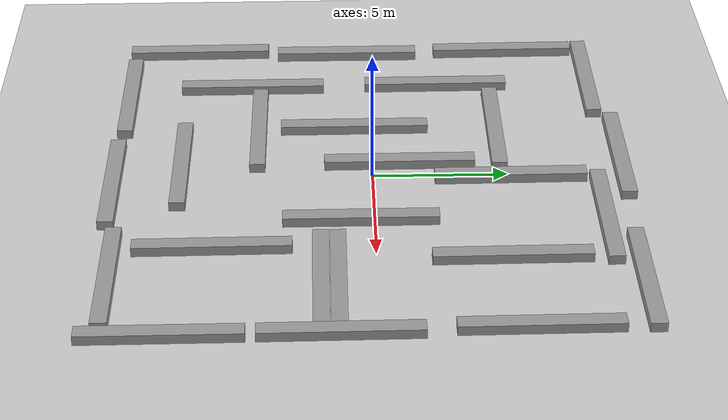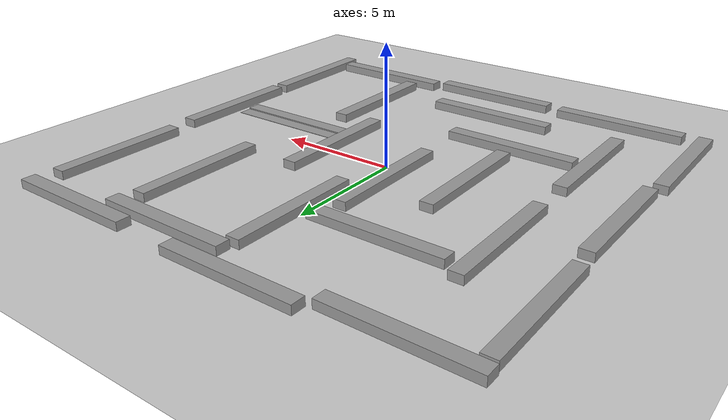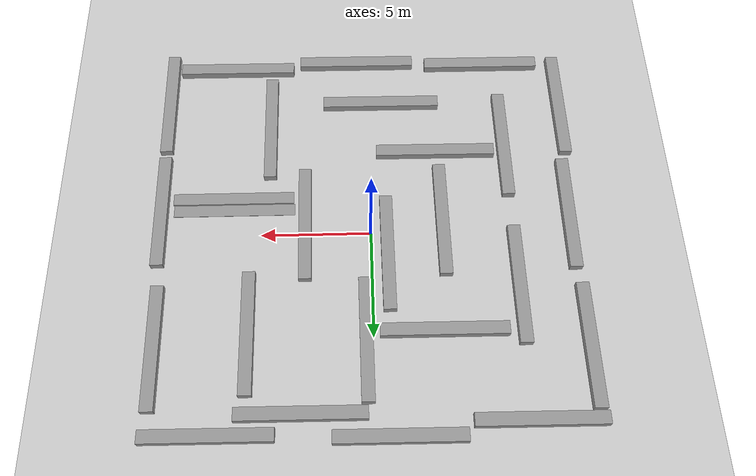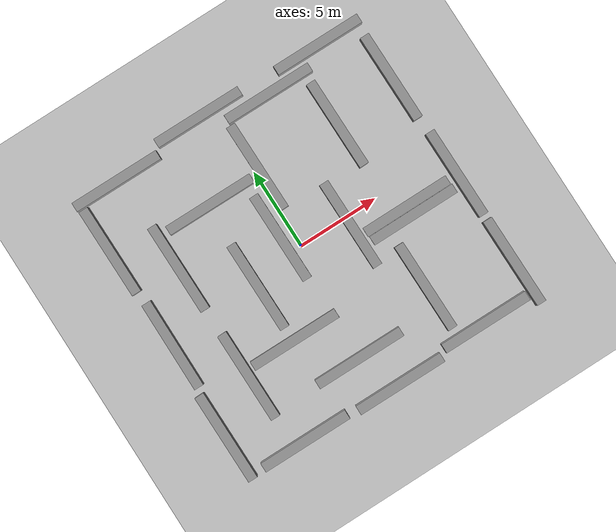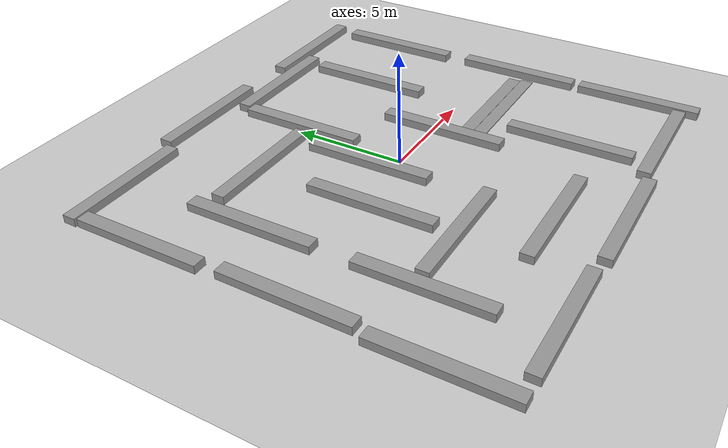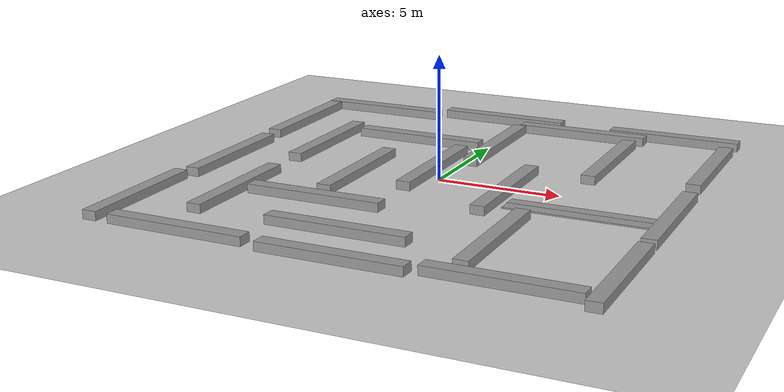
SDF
<sdf version="1.6">
 <world name="default">
  <light name="sun" type="directional">
   <pose>0 0 10 0 -0 0</pose>
   <diffuse>0.8 0.8 0.8 1</diffuse>
   <specular>0.1 0.1 0.1 1</specular>
   <attenuation>
    <range>1000</range>
    <constant>0.9</constant>
    <linear>0.01</linear>
    <quadratic>0.001</quadratic>
   </attenuation>
   <direction>-0.5 0.5 -1</direction>
  </light>
  <model name="ground_plane">
   <static>1</static>
   <link name="link">
    <collision name="collision">
     <geometry><plane><normal>0 0 1</normal><size>100 100</size></plane></geometry>
     <surface><friction><ode><mu>100</mu><mu2>50</mu2></ode></friction></surface>
    </collision>
    <visual name="visual">
     <cast_shadows>0</cast_shadows>
     <geometry><plane><normal>0 0 1</normal><size>100 100</size></plane></geometry>
     <material>
      <script><uri>file://media/materials/scripts/gazebo.material</uri><name>Gazebo/Grey</name></script>
     </material>
    </visual>
   </link>
  </model>
  <gravity>0 0 -9.8</gravity>
  <magnetic_field>6e-06 2.3e-05 -4.2e-05</magnetic_field>
  <atmosphere type="adiabatic"/>
  <physics name="default_physics" default="0" type="ode">
   <max_step_size>0.001</max_step_size>
   <real_time_factor>1</real_time_factor>
   <real_time_update_rate>1000</real_time_update_rate>
  </physics>
  <scene><ambient>0.4 0.4 0.4 1</ambient><background>0.7 0.7 0.7 1</background><shadows>1</shadows></scene>
  <spherical_coordinates>
   <surface_model>EARTH_WGS84</surface_model>
   <latitude_deg>0</latitude_deg>
   <longitude_deg>0</longitude_deg>
   <elevation>0</elevation>
   <heading_deg>0</heading_deg>
  </spherical_coordinates>
  <model name="unit_box_0_0">
   <pose>-9.1262 -0.79289 0.174776 0.001648 8e-06 -0.004603</pose>
   <link name="link">
    <inertial>
     <mass>1</mass>
     <inertia>
      <ixx>0.166667</ixx>
      <ixy>0</ixy>
      <ixz>0</ixz>
      <iyy>0.166667</iyy>
      <iyz>0</iyz>
      <izz>0.166667</izz>
     </inertia>
    </inertial>
    <collision name="collision"><geometry><box><size>0.580221 5.60028 0.358774</size></box></geometry></collision>
    <visual name="visual">
     <geometry><box><size>0.580221 5.60028 0.358774</size></box></geometry>
     <material>
      <script><name>Gazebo/Grey</name><uri>file://media/materials/scripts/gazebo.material</uri></script>
     </material>
    </visual>
   </link>
  </model>
  <model name="unit_box_0_0_clone">
   <pose>-9.37749 -6.78395 0.174777 0.001648 -8e-06 0.004603</pose>
   <link name="link">
    <inertial>
     <mass>1</mass>
     <inertia>
      <ixx>0.166667</ixx>
      <ixy>0</ixy>
      <ixz>0</ixz>
      <iyy>0.166667</iyy>
      <iyz>0</iyz>
      <izz>0.166667</izz>
     </inertia>
    </inertial>
    <collision name="collision"><geometry><box><size>0.580222 5.60029 0.358774</size></box></geometry></collision>
    <visual name="visual">
     <geometry><box><size>0.580222 5.60029 0.358774</size></box></geometry>
     <material>
      <script><name>Gazebo/Grey</name><uri>file://media/materials/scripts/gazebo.material</uri></script>
     </material>
    </visual>
   </link>
  </model>
  <model name="unit_box_0_0_clone_0">
   <pose>-9.2676 5.56528 0.174777 0.001648 -8e-06 0.004603</pose>
   <link name="link">
    <inertial>
     <mass>1</mass>
     <inertia>
      <ixx>0.166667</ixx>
      <ixy>0</ixy>
      <ixz>0</ixz>
      <iyy>0.166667</iyy>
      <iyz>0</iyz>
      <izz>0.166667</izz>
     </inertia>
    </inertial>
    <collision name="collision"><geometry><box><size>0.580222 5.60029 0.358774</size></box></geometry></collision>
    <visual name="visual">
     <geometry><box><size>0.580222 5.60029 0.358774</size></box></geometry>
     <material>
      <script><name>Gazebo/Grey</name><uri>file://media/materials/scripts/gazebo.material</uri></script>
     </material>
    </visual>
   </link>
  </model>
  <model name="unit_box_0_0_clone_1">
   <pose>-5.72714 -9.355 0.174777 -0.001648 -8e-06 -1.57542</pose>
   <link name="link">
    <inertial>
     <mass>1</mass>
     <inertia>
      <ixx>0.166667</ixx>
      <ixy>0</ixy>
      <ixz>0</ixz>
      <iyy>0.166667</iyy>
      <iyz>0</iyz>
      <izz>0.166667</izz>
     </inertia>
    </inertial>
    <collision name="collision"><geometry><box><size>0.580222 5.60029 0.358774</size></box></geometry></collision>
    <visual name="visual">
     <geometry><box><size>0.580222 5.60029 0.358774</size></box></geometry>
     <material>
      <script><name>Gazebo/Grey</name><uri>file://media/materials/scripts/gazebo.material</uri></script>
     </material>
    </visual>
   </link>
  </model>
  <model name="unit_box_0_0_clone_2">
   <pose>9.65284 -7.23387 0.174777 -0.001648 8e-06 0.004603</pose>
   <link name="link">
    <inertial>
     <mass>1</mass>
     <inertia>
      <ixx>0.166667</ixx>
      <ixy>0</ixy>
      <ixz>0</ixz>
      <iyy>0.166667</iyy>
      <iyz>0</iyz>
      <izz>0.166667</izz>
     </inertia>
    </inertial>
    <collision name="collision"><geometry><box><size>0.580222 5.60029 0.358774</size></box></geometry></collision>
    <visual name="visual">
     <geometry><box><size>0.580222 5.60029 0.358774</size></box></geometry>
     <material>
      <script><name>Gazebo/Grey</name><uri>file://media/materials/scripts/gazebo.material</uri></script>
     </material>
    </visual>
   </link>
  </model>
  <model name="unit_box_0_0_clone_3">
   <pose>9.62113 -1.29648 0.174777 0.001648 -8e-06 0.004603</pose>
   <link name="link">
    <inertial>
     <mass>1</mass>
     <inertia>
      <ixx>0.166667</ixx>
      <ixy>0</ixy>
      <ixz>0</ixz>
      <iyy>0.166667</iyy>
      <iyz>0</iyz>
      <izz>0.166667</izz>
     </inertia>
    </inertial>
    <collision name="collision"><geometry><box><size>0.580222 5.60029 0.358774</size></box></geometry></collision>
    <visual name="visual">
     <geometry><box><size>0.580222 5.60029 0.358774</size></box></geometry>
     <material>
      <script><name>Gazebo/Grey</name><uri>file://media/materials/scripts/gazebo.material</uri></script>
     </material>
    </visual>
   </link>
  </model>
  <model name="unit_box_0_0_clone_4">
   <pose>9.4587 5.29897 0.174777 0.001648 -8e-06 0.004603</pose>
   <link name="link">
    <inertial>
     <mass>1</mass>
     <inertia>
      <ixx>0.166667</ixx>
      <ixy>0</ixy>
      <ixz>0</ixz>
      <iyy>0.166667</iyy>
      <iyz>0</iyz>
      <izz>0.166667</izz>
     </inertia>
    </inertial>
    <collision name="collision"><geometry><box><size>0.580222 5.60029 0.358774</size></box></geometry></collision>
    <visual name="visual">
     <geometry><box><size>0.580222 5.60029 0.358774</size></box></geometry>
     <material>
      <script><name>Gazebo/Grey</name><uri>file://media/materials/scripts/gazebo.material</uri></script>
     </material>
    </visual>
   </link>
  </model>
  <model name="unit_box_0_0_clone_1_clone">
   <pose>0.502371 -9.54843 0.174777 0.001648 8e-06 -1.57542</pose>
   <link name="link">
    <inertial>
     <mass>1</mass>
     <inertia>
      <ixx>0.166667</ixx>
      <ixy>0</ixy>
      <ixz>0</ixz>
      <iyy>0.166667</iyy>
      <iyz>0</iyz>
      <izz>0.166667</izz>
     </inertia>
    </inertial>
    <collision name="collision"><geometry><box><size>0.580222 5.60029 0.358774</size></box></geometry></collision>
    <visual name="visual">
     <geometry><box><size>0.580222 5.60029 0.358774</size></box></geometry>
     <material>
      <script><name>Gazebo/Grey</name><uri>file://media/materials/scripts/gazebo.material</uri></script>
     </material>
    </visual>
   </link>
  </model>
  <model name="unit_box_0_0_clone_1_clone_0">
   <pose>6.43417 -9.23424 0.174777 0.001648 8e-06 -1.57542</pose>
   <link name="link">
    <inertial>
     <mass>1</mass>
     <inertia>
      <ixx>0.166667</ixx>
      <ixy>0</ixy>
      <ixz>0</ixz>
      <iyy>0.166667</iyy>
      <iyz>0</iyz>
      <izz>0.166667</izz>
     </inertia>
    </inertial>
    <collision name="collision"><geometry><box><size>0.580222 5.60029 0.358774</size></box></geometry></collision>
    <visual name="visual">
     <geometry><box><size>0.580222 5.60029 0.358774</size></box></geometry>
     <material>
      <script><name>Gazebo/Grey</name><uri>file://media/materials/scripts/gazebo.material</uri></script>
     </material>
    </visual>
   </link>
  </model>
  <model name="unit_box_0_0_clone_1_clone_1">
   <pose>-6.81366 8.731 0.174777 0.001648 8e-06 -1.57542</pose>
   <link name="link">
    <inertial>
     <mass>1</mass>
     <inertia>
      <ixx>0.166667</ixx>
      <ixy>0</ixy>
      <ixz>0</ixz>
      <iyy>0.166667</iyy>
      <iyz>0</iyz>
      <izz>0.166667</izz>
     </inertia>
    </inertial>
    <collision name="collision"><geometry><box><size>0.580222 5.60029 0.358774</size></box></geometry></collision>
    <visual name="visual">
     <geometry><box><size>0.580222 5.60029 0.358774</size></box></geometry>
     <material>
      <script><name>Gazebo/Grey</name><uri>file://media/materials/scripts/gazebo.material</uri></script>
     </material>
    </visual>
   </link>
  </model>
  <model name="unit_box_0_0_clone_1_clone_2">
   <pose>-0.978944 9.29524 0.174777 -0.001648 -8e-06 -1.57542</pose>
   <link name="link">
    <inertial>
     <mass>1</mass>
     <inertia>
      <ixx>0.166667</ixx>
      <ixy>0</ixy>
      <ixz>0</ixz>
      <iyy>0.166667</iyy>
      <iyz>0</iyz>
      <izz>0.166667</izz>
     </inertia>
    </inertial>
    <collision name="collision"><geometry><box><size>0.580222 5.60029 0.358774</size></box></geometry></collision>
    <visual name="visual">
     <geometry><box><size>0.580222 5.60029 0.358774</size></box></geometry>
     <material>
      <script><name>Gazebo/Grey</name><uri>file://media/materials/scripts/gazebo.material</uri></script>
     </material>
    </visual>
   </link>
  </model>
  <model name="unit_box_0_0_clone_1_clone_3">
   <pose>6.95643 9.11729 0.174777 0.001648 8e-06 -1.57542</pose>
   <link name="link">
    <inertial>
     <mass>1</mass>
     <inertia>
      <ixx>0.166667</ixx>
      <ixy>0</ixy>
      <ixz>0</ixz>
      <iyy>0.166667</iyy>
      <iyz>0</iyz>
      <izz>0.166667</izz>
     </inertia>
    </inertial>
    <collision name="collision"><geometry><box><size>0.580222 5.60029 0.358774</size></box></geometry></collision>
    <visual name="visual">
     <geometry><box><size>0.580222 5.60029 0.358774</size></box></geometry>
     <material>
      <script><name>Gazebo/Grey</name><uri>file://media/materials/scripts/gazebo.material</uri></script>
     </material>
    </visual>
   </link>
  </model>
  <model name="unit_box_0_0_clone_1_clone_4">
   <pose>3.09956 8.28188 0.174777 0.001648 8e-06 -1.57542</pose>
   <link name="link">
    <inertial>
     <mass>1</mass>
     <inertia>
      <ixx>0.166667</ixx>
      <ixy>0</ixy>
      <ixz>0</ixz>
      <iyy>0.166667</iyy>
      <iyz>0</iyz>
      <izz>0.166667</izz>
     </inertia>
    </inertial>
    <collision name="collision"><geometry><box><size>0.580222 5.60029 0.358774</size></box></geometry></collision>
    <visual name="visual">
     <geometry><box><size>0.580222 5.60029 0.358774</size></box></geometry>
     <material>
      <script><name>Gazebo/Grey</name><uri>file://media/materials/scripts/gazebo.material</uri></script>
     </material>
    </visual>
   </link>
  </model>
  <model name="unit_box_0_0_clone_4_clone">
   <pose>5.45569 4.71479 0.174777 0.001648 -8e-06 0.004603</pose>
   <link name="link">
    <inertial>
     <mass>1</mass>
     <inertia>
      <ixx>0.166667</ixx>
      <ixy>0</ixy>
      <ixz>0</ixz>
      <iyy>0.166667</iyy>
      <iyz>0</iyz>
      <izz>0.166667</izz>
     </inertia>
    </inertial>
    <collision name="collision"><geometry><box><size>0.580222 5.60029 0.358774</size></box></geometry></collision>
    <visual name="visual">
     <geometry><box><size>0.580222 5.60029 0.358774</size></box></geometry>
     <material>
      <script><name>Gazebo/Grey</name><uri>file://media/materials/scripts/gazebo.material</uri></script>
     </material>
    </visual>
   </link>
  </model>
  <model name="unit_box_0_0_clone_4_clone_0">
   <pose>-6.44751 -4.56293 0.174777 -0.001648 8e-06 0.004603</pose>
   <link name="link">
    <inertial>
     <mass>1</mass>
     <inertia>
      <ixx>0.166667</ixx>
      <ixy>0</ixy>
      <ixz>0</ixz>
      <iyy>0.166667</iyy>
      <iyz>0</iyz>
      <izz>0.166667</izz>
     </inertia>
    </inertial>
    <collision name="collision"><geometry><box><size>0.580222 5.60029 0.358774</size></box></geometry></collision>
    <visual name="visual">
     <geometry><box><size>0.580222 5.60029 0.358774</size></box></geometry>
     <material>
      <script><name>Gazebo/Grey</name><uri>file://media/materials/scripts/gazebo.material</uri></script>
     </material>
    </visual>
   </link>
  </model>
  <model name="unit_box_0_0_clone_4_clone_1">
   <pose>-6.51401 2.68135 0.174777 -0.001648 8e-06 0.004603</pose>
   <link name="link">
    <inertial>
     <mass>1</mass>
     <inertia>
      <ixx>0.166667</ixx>
      <ixy>0</ixy>
      <ixz>0</ixz>
      <iyy>0.166667</iyy>
      <iyz>0</iyz>
      <izz>0.166667</izz>
     </inertia>
    </inertial>
    <collision name="collision"><geometry><box><size>0.580222 5.60029 0.358774</size></box></geometry></collision>
    <visual name="visual">
     <geometry><box><size>0.580222 5.60029 0.358774</size></box></geometry>
     <material>
      <script><name>Gazebo/Grey</name><uri>file://media/materials/scripts/gazebo.material</uri></script>
     </material>
    </visual>
   </link>
  </model>
  <model name="unit_box_0_0_clone_4_clone_2">
   <pose>-3.29335 -0.602323 0.174777 -0.001648 8e-06 0.004603</pose>
   <link name="link">
    <inertial>
     <mass>1</mass>
     <inertia>
      <ixx>0.166667</ixx>
      <ixy>0</ixy>
      <ixz>0</ixz>
      <iyy>0.166667</iyy>
      <iyz>0</iyz>
      <izz>0.166667</izz>
     </inertia>
    </inertial>
    <collision name="collision"><geometry><box><size>0.580222 5.60029 0.358774</size></box></geometry></collision>
    <visual name="visual">
     <geometry><box><size>0.580222 5.60029 0.358774</size></box></geometry>
     <material>
      <script><name>Gazebo/Grey</name><uri>file://media/materials/scripts/gazebo.material</uri></script>
     </material>
    </visual>
   </link>
  </model>
  <model name="unit_box_0_0_clone_1_clone_clone">
   <pose>-3.16106 -4.24808 0.174777 0.001648 8e-06 -1.57542</pose>
   <link name="link">
    <inertial>
     <mass>1</mass>
     <inertia>
      <ixx>0.166667</ixx>
      <ixy>0</ixy>
      <ixz>0</ixz>
      <iyy>0.166667</iyy>
      <iyz>0</iyz>
      <izz>0.166667</izz>
     </inertia>
    </inertial>
    <collision name="collision"><geometry><box><size>0.580222 5.60029 0.358774</size></box></geometry></collision>
    <visual name="visual">
     <geometry><box><size>0.580222 5.60029 0.358774</size></box></geometry>
     <material>
      <script><name>Gazebo/Grey</name><uri>file://media/materials/scripts/gazebo.material</uri></script>
     </material>
    </visual>
   </link>
  </model>
  <model name="unit_box_0_0_clone_1_clone_clone_0">
   <pose>-0.649446 -7.08074 0.174777 0.001648 8e-06 -1.57542</pose>
   <link name="link">
    <inertial>
     <mass>1</mass>
     <inertia>
      <ixx>0.166667</ixx>
      <ixy>0</ixy>
      <ixz>0</ixz>
      <iyy>0.166667</iyy>
      <iyz>0</iyz>
      <izz>0.166667</izz>
     </inertia>
    </inertial>
    <collision name="collision"><geometry><box><size>0.580222 5.60029 0.358774</size></box></geometry></collision>
    <visual name="visual">
     <geometry><box><size>0.580222 5.60029 0.358774</size></box></geometry>
     <material>
      <script><name>Gazebo/Grey</name><uri>file://media/materials/scripts/gazebo.material</uri></script>
     </material>
    </visual>
   </link>
  </model>
  <model name="unit_box_0_0_clone_1_clone_clone_1">
   <pose>-3.07283 4.75904 0.174777 -0.001648 -8e-06 -1.57542</pose>
   <link name="link">
    <inertial>
     <mass>1</mass>
     <inertia>
      <ixx>0.166667</ixx>
      <ixy>0</ixy>
      <ixz>0</ixz>
      <iyy>0.166667</iyy>
      <iyz>0</iyz>
      <izz>0.166667</izz>
     </inertia>
    </inertial>
    <collision name="collision"><geometry><box><size>0.580222 5.60029 0.358774</size></box></geometry></collision>
    <visual name="visual">
     <geometry><box><size>0.580222 5.60029 0.358774</size></box></geometry>
     <material>
      <script><name>Gazebo/Grey</name><uri>file://media/materials/scripts/gazebo.material</uri></script>
     </material>
    </visual>
   </link>
  </model>
  <model name="unit_box_0_0_clone_4_clone_clone">
   <pose>-0.734753 1.03207 0.174777 -0.001648 8e-06 0.004603</pose>
   <link name="link">
    <inertial>
     <mass>1</mass>
     <inertia>
      <ixx>0.166667</ixx>
      <ixy>0</ixy>
      <ixz>0</ixz>
      <iyy>0.166667</iyy>
      <iyz>0</iyz>
      <izz>0.166667</izz>
     </inertia>
    </inertial>
    <collision name="collision"><geometry><box><size>0.580222 5.60029 0.358774</size></box></geometry></collision>
    <visual name="visual">
     <geometry><box><size>0.580222 5.60029 0.358774</size></box></geometry>
     <material>
      <script><name>Gazebo/Grey</name><uri>file://media/materials/scripts/gazebo.material</uri></script>
     </material>
    </visual>
   </link>
  </model>
  <model name="unit_box_0_0_clone_4_clone_clone_0">
   <pose>3.00091 -0.489401 0.174777 -0.001648 8e-06 0.004603</pose>
   <link name="link">
    <inertial>
     <mass>1</mass>
     <inertia>
      <ixx>0.166667</ixx>
      <ixy>0</ixy>
      <ixz>0</ixz>
      <iyy>0.166667</iyy>
      <iyz>0</iyz>
      <izz>0.166667</izz>
     </inertia>
    </inertial>
    <collision name="collision"><geometry><box><size>0.580222 5.60029 0.358774</size></box></geometry></collision>
    <visual name="visual">
     <geometry><box><size>0.580222 5.60029 0.358774</size></box></geometry>
     <material>
      <script><name>Gazebo/Grey</name><uri>file://media/materials/scripts/gazebo.material</uri></script>
     </material>
    </visual>
   </link>
  </model>
  <model name="unit_box_0_0_clone_4_clone_clone_1">
   <pose>4.6709 -5.72559 0.174777 0.001648 -8e-06 0.004603</pose>
   <link name="link">
    <inertial>
     <mass>1</mass>
     <inertia>
      <ixx>0.166667</ixx>
      <ixy>0</ixy>
      <ixz>0</ixz>
      <iyy>0.166667</iyy>
      <iyz>0</iyz>
      <izz>0.166667</izz>
     </inertia>
    </inertial>
    <collision name="collision"><geometry><box><size>0.580222 5.60029 0.358774</size></box></geometry></collision>
    <visual name="visual">
     <geometry><box><size>0.580222 5.60029 0.358774</size></box></geometry>
     <material>
      <script><name>Gazebo/Grey</name><uri>file://media/materials/scripts/gazebo.material</uri></script>
     </material>
    </visual>
   </link>
  </model>
  <model name="unit_box_0_0_clone_4_clone_clone_2">
   <pose>0.31323 5.09158 0.174777 0.001648 -8e-06 0.004603</pose>
   <link name="link">
    <inertial>
     <mass>1</mass>
     <inertia>
      <ixx>0.166667</ixx>
      <ixy>0</ixy>
      <ixz>0</ixz>
      <iyy>0.166667</iyy>
      <iyz>0</iyz>
      <izz>0.166667</izz>
     </inertia>
    </inertial>
    <collision name="collision"><geometry><box><size>0.580222 5.60029 0.358774</size></box></geometry></collision>
    <visual name="visual">
     <geometry><box><size>0.580222 5.60029 0.358774</size></box></geometry>
     <material>
      <script><name>Gazebo/Grey</name><uri>file://media/materials/scripts/gazebo.material</uri></script>
     </material>
    </visual>
   </link>
  </model>
  <model name="unit_box_0_0_clone_1_clone_0_clone">
   <pose>6.33896 -1.9438 0.02706 0 2e-06 -1.57206</pose>
   <link name="link">
    <inertial>
     <mass>1</mass>
     <inertia>
      <ixx>0.166667</ixx>
      <ixy>0</ixy>
      <ixz>0</ixz>
      <iyy>0.166667</iyy>
      <iyz>0</iyz>
      <izz>0.166667</izz>
     </inertia>
    </inertial>
    <collision name="collision"><geometry><box><size>0.580222 5.60029 0.05412</size></box></geometry></collision>
    <visual name="visual">
     <geometry><box><size>0.580222 5.60029 0.05412</size></box></geometry>
     <material>
      <script><name>Gazebo/Grey</name><uri>file://media/materials/scripts/gazebo.material</uri></script>
     </material>
    </visual>
   </link>
  </model>
  <model name="unit_box_0_0_clone_1_clone_0_clone_clone">
   <pose>6.28118 -1.33212 0.009025 -0 -2e-06 -1.57206</pose>
   <link name="link">
    <inertial>
     <mass>1</mass>
     <inertia>
      <ixx>0.166667</ixx>
      <ixy>0</ixy>
      <ixz>0</ixz>
      <iyy>0.166667</iyy>
      <iyz>0</iyz>
      <izz>0.166667</izz>
     </inertia>
    </inertial>
    <collision name="collision">
     <geometry><box><size>0.580222 5.60029 0.0180491</size></box></geometry>
    </collision>
    <visual name="visual">
     <geometry><box><size>0.580222 5.60029 0.0180491</size></box></geometry>
     <material>
      <script><name>Gazebo/Grey</name><uri>file://media/materials/scripts/gazebo.material</uri></script>
     </material>
    </visual>
   </link>
  </model>
 </world>
</sdf>
